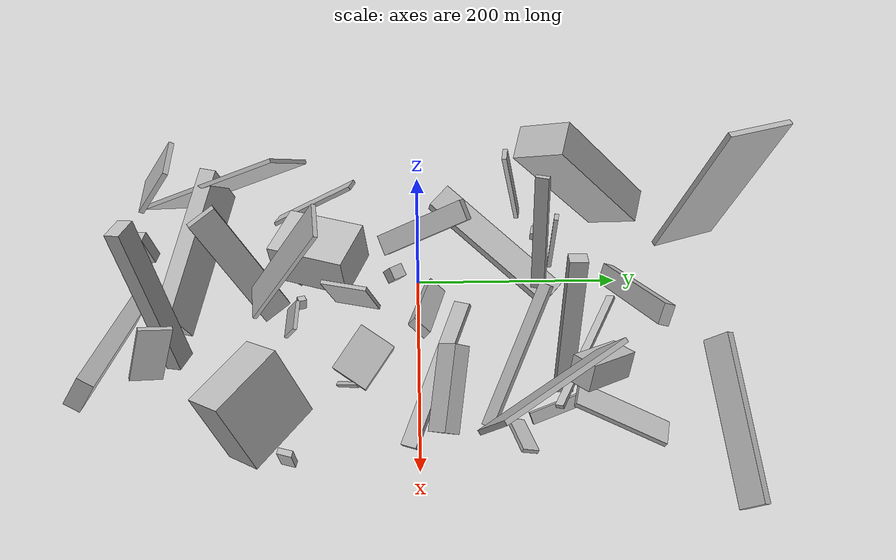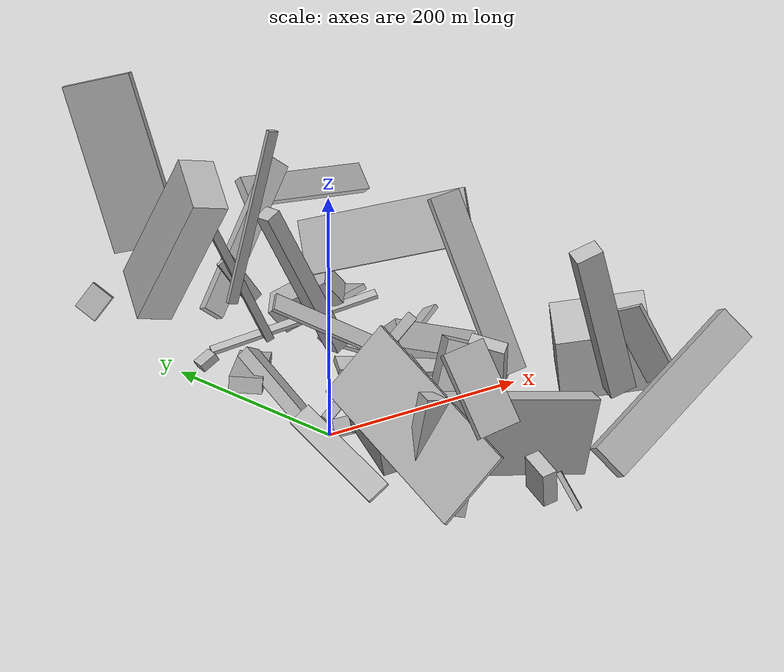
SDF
<sdf version="1.6">
 <world name="default">
  <model name="building_1">
   <static>0</static>
   <pose>174.36734629688388 231.2599779599466 27.141446685848827 -0.8732872669229372 -1.113736129037199 2.1446664471426815</pose>
   <link name="link">
    <gravity>0</gravity>
    <pose>0 0 47.5 0 0 0</pose>
    <collision name="collision"><geometry><box><size>5 27 95</size></box></geometry></collision>
    <visual name="visual">
     <cast_shadows>0</cast_shadows>
     <geometry><box><size>5 27 95</size></box></geometry>
     <material>
      <script>
       <uri>model://HANNAS_wall/materials/scripts</uri>
       <uri>model://HANNAS_wall/materials/textures</uri>
       <name>vrc/HANNAS_wall</name>
      </script>
     </material>
    </visual>
   </link>
  </model>
  <model name="building_3">
   <static>0</static>
   <pose>-40.39910329618209 191.63990746948053 79.43894417712931 0.6008189143455406 0.16520256820637802 -0.25455941626639517</pose>
   <link name="link">
    <gravity>0</gravity>
    <pose>0 0 71.0 0 0 0</pose>
    <collision name="collision"><geometry><box><size>31 51 142</size></box></geometry></collision>
    <visual name="visual">
     <cast_shadows>0</cast_shadows>
     <geometry><box><size>31 51 142</size></box></geometry>
     <material>
      <script>
       <uri>model://HANNAS_wall/materials/scripts</uri>
       <uri>model://HANNAS_wall/materials/textures</uri>
       <name>vrc/HANNAS_wall</name>
      </script>
     </material>
    </visual>
   </link>
  </model>
  <model name="building_5">
   <static>0</static>
   <pose>-25.729597605558347 94.49647526092654 94.10128005950435 0.2001391457598168 -0.12009668887181194 1.411736404524612</pose>
   <link name="link">
    <gravity>0</gravity>
    <pose>0 0 75.0 0 0 0</pose>
    <collision name="collision"><geometry><box><size>4 9 150</size></box></geometry></collision>
    <visual name="visual">
     <cast_shadows>0</cast_shadows>
     <geometry><box><size>4 9 150</size></box></geometry>
     <material>
      <script>
       <uri>model://HANNAS_wall/materials/scripts</uri>
       <uri>model://HANNAS_wall/materials/textures</uri>
       <name>vrc/HANNAS_wall</name>
      </script>
     </material>
    </visual>
   </link>
  </model>
  <model name="building_13">
   <static>0</static>
   <pose>-77.18770310812056 -106.40213230266279 33.805938020403794 2.3780515227894328 -0.5187781244510645 1.7485050249262817</pose>
   <link name="link">
    <gravity>0</gravity>
    <pose>0 0 2.0 0 0 0</pose>
    <collision name="collision"><geometry><box><size>93 20 4</size></box></geometry></collision>
    <visual name="visual">
     <cast_shadows>0</cast_shadows>
     <geometry><box><size>93 20 4</size></box></geometry>
     <material>
      <script>
       <uri>model://HANNAS_wall/materials/scripts</uri>
       <uri>model://HANNAS_wall/materials/textures</uri>
       <name>vrc/HANNAS_wall</name>
      </script>
     </material>
    </visual>
   </link>
  </model>
  <model name="building_14">
   <static>0</static>
   <pose>92.19635295547839 164.00552756208197 37.05098580078586 -2.5665605756596066 -1.0571663567287026 -2.5434076082742045</pose>
   <link name="link">
    <gravity>0</gravity>
    <pose>0 0 4.0 0 0 0</pose>
    <collision name="collision"><geometry><box><size>4 150 8</size></box></geometry></collision>
    <visual name="visual">
     <cast_shadows>0</cast_shadows>
     <geometry><box><size>4 150 8</size></box></geometry>
     <material>
      <script>
       <uri>model://HANNAS_wall/materials/scripts</uri>
       <uri>model://HANNAS_wall/materials/textures</uri>
       <name>vrc/HANNAS_wall</name>
      </script>
     </material>
    </visual>
   </link>
  </model>
  <model name="building_15">
   <static>0</static>
   <pose>3.5551108523970782 248.26793313926453 99.56997522379109 -0.298829362969662 -0.042202072265189856 0.41816913267975864</pose>
   <link name="link">
    <gravity>0</gravity>
    <pose>0 0 75.0 0 0 0</pose>
    <collision name="collision"><geometry><box><size>5 69 150</size></box></geometry></collision>
    <visual name="visual">
     <cast_shadows>0</cast_shadows>
     <geometry><box><size>5 69 150</size></box></geometry>
     <material>
      <script>
       <uri>model://HANNAS_wall/materials/scripts</uri>
       <uri>model://HANNAS_wall/materials/textures</uri>
       <name>vrc/HANNAS_wall</name>
      </script>
     </material>
    </visual>
   </link>
  </model>
  <model name="building_16">
   <static>0</static>
   <pose>-7.268309121083895 -17.85003618392824 12.61024600349591 -1.2063355338171553 -0.3518623754609598 -2.6668244650270623</pose>
   <link name="link">
    <gravity>0</gravity>
    <pose>0 0 7.5 0 0 0</pose>
    <collision name="collision"><geometry><box><size>13 14 15</size></box></geometry></collision>
    <visual name="visual">
     <cast_shadows>0</cast_shadows>
     <geometry><box><size>13 14 15</size></box></geometry>
     <material>
      <script>
       <uri>model://HANNAS_wall/materials/scripts</uri>
       <uri>model://HANNAS_wall/materials/textures</uri>
       <name>vrc/HANNAS_wall</name>
      </script>
     </material>
    </visual>
   </link>
  </model>
  <model name="building_17">
   <static>0</static>
   <pose>194.1936113669263 -120.89630584356293 42.32402051976345 -2.1458135325037277 -1.5479236261824147 -1.2586047190194605</pose>
   <link name="link">
    <gravity>0</gravity>
    <pose>0 0 3.0 0 0 0</pose>
    <collision name="collision"><geometry><box><size>33 14 6</size></box></geometry></collision>
    <visual name="visual">
     <cast_shadows>0</cast_shadows>
     <geometry><box><size>33 14 6</size></box></geometry>
     <material>
      <script>
       <uri>model://HANNAS_wall/materials/scripts</uri>
       <uri>model://HANNAS_wall/materials/textures</uri>
       <name>vrc/HANNAS_wall</name>
      </script>
     </material>
    </visual>
   </link>
  </model>
  <model name="building_20">
   <static>0</static>
   <pose>129.70936178740885 -126.98818704035558 75.74811191560099 -1.336728795560796 -0.9689612109121426 -2.4312931135623193</pose>
   <link name="link">
    <gravity>0</gravity>
    <pose>0 0 38.0 0 0 0</pose>
    <collision name="collision"><geometry><box><size>76 42 76</size></box></geometry></collision>
    <visual name="visual">
     <cast_shadows>0</cast_shadows>
     <geometry><box><size>76 42 76</size></box></geometry>
     <material>
      <script>
       <uri>model://HANNAS_wall/materials/scripts</uri>
       <uri>model://HANNAS_wall/materials/textures</uri>
       <name>vrc/HANNAS_wall</name>
      </script>
     </material>
    </visual>
   </link>
  </model>
  <model name="building_22">
   <static>0</static>
   <pose>-3.1592086004567825 -123.10743314857336 13.08156300726554 2.6225937311496597 -0.6310449323694713 -0.13633728982245896</pose>
   <link name="link">
    <gravity>0</gravity>
    <pose>0 0 3.0 0 0 0</pose>
    <collision name="collision"><geometry><box><size>4 20 6</size></box></geometry></collision>
    <visual name="visual">
     <cast_shadows>0</cast_shadows>
     <geometry><box><size>4 20 6</size></box></geometry>
     <material>
      <script>
       <uri>model://HANNAS_wall/materials/scripts</uri>
       <uri>model://HANNAS_wall/materials/textures</uri>
       <name>vrc/HANNAS_wall</name>
      </script>
     </material>
    </visual>
   </link>
  </model>
  <model name="building_23">
   <static>0</static>
   <pose>-27.39100389363393 117.93627369657851 44.05733290219502 3.0182347313635725 -0.996153715034612 3.076026591196126</pose>
   <link name="link">
    <gravity>0</gravity>
    <pose>0 0 8.0 0 0 0</pose>
    <collision name="collision"><geometry><box><size>7 13 16</size></box></geometry></collision>
    <visual name="visual">
     <cast_shadows>0</cast_shadows>
     <geometry><box><size>7 13 16</size></box></geometry>
     <material>
      <script>
       <uri>model://HANNAS_wall/materials/scripts</uri>
       <uri>model://HANNAS_wall/materials/textures</uri>
       <name>vrc/HANNAS_wall</name>
      </script>
     </material>
    </visual>
   </link>
  </model>
  <model name="building_24">
   <static>0</static>
   <pose>26.973400686674545 132.14765035069843 24.03517875023291 1.3776252631096089 0.05282714476733622 -0.7243072520045866</pose>
   <link name="link">
    <gravity>0</gravity>
    <pose>0 0 75.0 0 0 0</pose>
    <collision name="collision"><geometry><box><size>27 13 150</size></box></geometry></collision>
    <visual name="visual">
     <cast_shadows>0</cast_shadows>
     <geometry><box><size>27 13 150</size></box></geometry>
     <material>
      <script>
       <uri>model://HANNAS_wall/materials/scripts</uri>
       <uri>model://HANNAS_wall/materials/textures</uri>
       <name>vrc/HANNAS_wall</name>
      </script>
     </material>
    </visual>
   </link>
  </model>
  <model name="building_25">
   <static>0</static>
   <pose>46.15120974842775 11.531267786093599 46.95422453565074 -2.5470234188605807 0.7614344961592602 2.9359318297008716</pose>
   <link name="link">
    <gravity>0</gravity>
    <pose>0 0 4.5 0 0 0</pose>
    <collision name="collision"><geometry><box><size>111 20 9</size></box></geometry></collision>
    <visual name="visual">
     <cast_shadows>0</cast_shadows>
     <geometry><box><size>111 20 9</size></box></geometry>
     <material>
      <script>
       <uri>model://HANNAS_wall/materials/scripts</uri>
       <uri>model://HANNAS_wall/materials/textures</uri>
       <name>vrc/HANNAS_wall</name>
      </script>
     </material>
    </visual>
   </link>
  </model>
  <model name="building_27">
   <static>0</static>
   <pose>108.48793379506628 9.311899910124922 25.417209497107965 -0.3328074199115779 -1.1414288183826067 -1.634729710016632</pose>
   <link name="link">
    <gravity>0</gravity>
    <pose>0 0 8.5 0 0 0</pose>
    <collision name="collision"><geometry><box><size>5 150 17</size></box></geometry></collision>
    <visual name="visual">
     <cast_shadows>0</cast_shadows>
     <geometry><box><size>5 150 17</size></box></geometry>
     <material>
      <script>
       <uri>model://HANNAS_wall/materials/scripts</uri>
       <uri>model://HANNAS_wall/materials/textures</uri>
       <name>vrc/HANNAS_wall</name>
      </script>
     </material>
    </visual>
   </link>
  </model>
  <model name="building_28">
   <static>0</static>
   <pose>67.8852507462868 -233.49586623435292 51.98444093050171 0.6295555266161983 -1.385721737459078 -0.8874586800261298</pose>
   <link name="link">
    <gravity>0</gravity>
    <pose>0 0 75.0 0 0 0</pose>
    <collision name="collision"><geometry><box><size>63 16 150</size></box></geometry></collision>
    <visual name="visual">
     <cast_shadows>0</cast_shadows>
     <geometry><box><size>63 16 150</size></box></geometry>
     <material>
      <script>
       <uri>model://HANNAS_wall/materials/scripts</uri>
       <uri>model://HANNAS_wall/materials/textures</uri>
       <name>vrc/HANNAS_wall</name>
      </script>
     </material>
    </visual>
   </link>
  </model>
  <model name="building_29">
   <static>0</static>
   <pose>79.31475940042036 -39.43008949530707 42.58717189564554 2.421663465910351 -1.2280895493897095 0.12406963455317943</pose>
   <link name="link">
    <gravity>0</gravity>
    <pose>0 0 24.0 0 0 0</pose>
    <collision name="collision"><geometry><box><size>67 37 48</size></box></geometry></collision>
    <visual name="visual">
     <cast_shadows>0</cast_shadows>
     <geometry><box><size>67 37 48</size></box></geometry>
     <material>
      <script>
       <uri>model://HANNAS_wall/materials/scripts</uri>
       <uri>model://HANNAS_wall/materials/textures</uri>
       <name>vrc/HANNAS_wall</name>
      </script>
     </material>
    </visual>
   </link>
  </model>
  <model name="building_30">
   <static>0</static>
   <pose>154.85291042358122 116.12120214122866 114.21284905763811 2.496139732447904 -1.1261855624203934 1.2627710896779047</pose>
   <link name="link">
    <gravity>0</gravity>
    <pose>0 0 2.5 0 0 0</pose>
    <collision name="collision"><geometry><box><size>48 150 5</size></box></geometry></collision>
    <visual name="visual">
     <cast_shadows>0</cast_shadows>
     <geometry><box><size>48 150 5</size></box></geometry>
     <material>
      <script>
       <uri>model://HANNAS_wall/materials/scripts</uri>
       <uri>model://HANNAS_wall/materials/textures</uri>
       <name>vrc/HANNAS_wall</name>
      </script>
     </material>
    </visual>
   </link>
  </model>
  <model name="building_32">
   <static>0</static>
   <pose>113.96951645104194 -219.26711060321406 74.87785327934884 0.3654502174996851 -0.3640460834052259 -0.3948720870360139</pose>
   <link name="link">
    <gravity>0</gravity>
    <pose>0 0 75.0 0 0 0</pose>
    <collision name="collision"><geometry><box><size>22 15 150</size></box></geometry></collision>
    <visual name="visual">
     <cast_shadows>0</cast_shadows>
     <geometry><box><size>22 15 150</size></box></geometry>
     <material>
      <script>
       <uri>model://HANNAS_wall/materials/scripts</uri>
       <uri>model://HANNAS_wall/materials/textures</uri>
       <name>vrc/HANNAS_wall</name>
      </script>
     </material>
    </visual>
   </link>
  </model>
  <model name="building_34">
   <static>0</static>
   <pose>-44.03531383251006 -206.81156835450474 26.19266079417418 1.0192126103507604 -0.7417760807912261 2.3349694983214686</pose>
   <link name="link">
    <gravity>0</gravity>
    <pose>0 0 8.5 0 0 0</pose>
    <collision name="collision"><geometry><box><size>22 27 17</size></box></geometry></collision>
    <visual name="visual">
     <cast_shadows>0</cast_shadows>
     <geometry><box><size>22 27 17</size></box></geometry>
     <material>
      <script>
       <uri>model://HANNAS_wall/materials/scripts</uri>
       <uri>model://HANNAS_wall/materials/textures</uri>
       <name>vrc/HANNAS_wall</name>
      </script>
     </material>
    </visual>
   </link>
  </model>
  <model name="building_39">
   <static>0</static>
   <pose>-50.98980567068213 -263.5373254386018 89.99659241084144 0.1684352785363565 -0.5260640166883573 -1.6994031148283462</pose>
   <link name="link">
    <gravity>0</gravity>
    <pose>0 0 34.0 0 0 0</pose>
    <collision name="collision"><geometry><box><size>5 38 68</size></box></geometry></collision>
    <visual name="visual">
     <cast_shadows>0</cast_shadows>
     <geometry><box><size>5 38 68</size></box></geometry>
     <material>
      <script>
       <uri>model://HANNAS_wall/materials/scripts</uri>
       <uri>model://HANNAS_wall/materials/textures</uri>
       <name>vrc/HANNAS_wall</name>
      </script>
     </material>
    </visual>
   </link>
  </model>
  <model name="building_41">
   <static>0</static>
   <pose>6.445788620039551 -281.6871438189983 34.478035078115624 -2.651118027625952 -0.9650329817899014 1.901986694330685</pose>
   <link name="link">
    <gravity>0</gravity>
    <pose>0 0 2.0 0 0 0</pose>
    <collision name="collision"><geometry><box><size>32 5 4</size></box></geometry></collision>
    <visual name="visual">
     <cast_shadows>0</cast_shadows>
     <geometry><box><size>32 5 4</size></box></geometry>
     <material>
      <script>
       <uri>model://HANNAS_wall/materials/scripts</uri>
       <uri>model://HANNAS_wall/materials/textures</uri>
       <name>vrc/HANNAS_wall</name>
      </script>
     </material>
    </visual>
   </link>
  </model>
  <model name="building_42">
   <static>0</static>
   <pose>-3.6266431205827603 116.70644551662963 99.17197442002293 1.0997683650112111 -0.1886422758779975 1.2557613244781551</pose>
   <link name="link">
    <gravity>0</gravity>
    <pose>0 0 3.5 0 0 0</pose>
    <collision name="collision"><geometry><box><size>13 122 7</size></box></geometry></collision>
    <visual name="visual">
     <cast_shadows>0</cast_shadows>
     <geometry><box><size>13 122 7</size></box></geometry>
     <material>
      <script>
       <uri>model://HANNAS_wall/materials/scripts</uri>
       <uri>model://HANNAS_wall/materials/textures</uri>
       <name>vrc/HANNAS_wall</name>
      </script>
     </material>
    </visual>
   </link>
  </model>
  <model name="building_44">
   <static>0</static>
   <pose>59.00420479480109 -153.26032268849926 80.75520378274454 0.4755439015231281 0.04764452115313102 -3.0533476879180346</pose>
   <link name="link">
    <gravity>0</gravity>
    <pose>0 0 75.0 0 0 0</pose>
    <collision name="collision"><geometry><box><size>32 4 150</size></box></geometry></collision>
    <visual name="visual">
     <cast_shadows>0</cast_shadows>
     <geometry><box><size>32 4 150</size></box></geometry>
     <material>
      <script>
       <uri>model://HANNAS_wall/materials/scripts</uri>
       <uri>model://HANNAS_wall/materials/textures</uri>
       <name>vrc/HANNAS_wall</name>
      </script>
     </material>
    </visual>
   </link>
  </model>
  <model name="building_48">
   <static>0</static>
   <pose>65.30433910517637 191.36793252850256 109.62142704465931 1.9847587397351774 -0.6209544276973409 2.7833804690738386</pose>
   <link name="link">
    <gravity>0</gravity>
    <pose>0 0 5.0 0 0 0</pose>
    <collision name="collision"><geometry><box><size>19 147 10</size></box></geometry></collision>
    <visual name="visual">
     <cast_shadows>0</cast_shadows>
     <geometry><box><size>19 147 10</size></box></geometry>
     <material>
      <script>
       <uri>model://HANNAS_wall/materials/scripts</uri>
       <uri>model://HANNAS_wall/materials/textures</uri>
       <name>vrc/HANNAS_wall</name>
      </script>
     </material>
    </visual>
   </link>
  </model>
  <model name="building_50">
   <static>0</static>
   <pose>171.27620363479522 21.948212680981598 30.01114881751691 -1.106334248917696 -0.831722412417579 1.0770260152764768</pose>
   <link name="link">
    <gravity>0</gravity>
    <pose>0 0 41.5 0 0 0</pose>
    <collision name="collision"><geometry><box><size>26 17 83</size></box></geometry></collision>
    <visual name="visual">
     <cast_shadows>0</cast_shadows>
     <geometry><box><size>26 17 83</size></box></geometry>
     <material>
      <script>
       <uri>model://HANNAS_wall/materials/scripts</uri>
       <uri>model://HANNAS_wall/materials/textures</uri>
       <name>vrc/HANNAS_wall</name>
      </script>
     </material>
    </visual>
   </link>
  </model>
  <model name="building_52">
   <static>0</static>
   <pose>84.7817575338651 131.9434062277884 79.16911351836879 1.595790159095712 0.5020599231579506 -3.1314358716728115</pose>
   <link name="link">
    <gravity>0</gravity>
    <pose>0 0 8.5 0 0 0</pose>
    <collision name="collision"><geometry><box><size>14 150 17</size></box></geometry></collision>
    <visual name="visual">
     <cast_shadows>0</cast_shadows>
     <geometry><box><size>14 150 17</size></box></geometry>
     <material>
      <script>
       <uri>model://HANNAS_wall/materials/scripts</uri>
       <uri>model://HANNAS_wall/materials/textures</uri>
       <name>vrc/HANNAS_wall</name>
      </script>
     </material>
    </visual>
   </link>
  </model>
  <model name="building_53">
   <static>0</static>
   <pose>111.46002044455663 -275.6524530314864 85.74526493557487 1.0876713078447433 -0.6392996609157392 -0.11612229347507132</pose>
   <link name="link">
    <gravity>0</gravity>
    <pose>0 0 8.0 0 0 0</pose>
    <collision name="collision"><geometry><box><size>150 31 16</size></box></geometry></collision>
    <visual name="visual">
     <cast_shadows>0</cast_shadows>
     <geometry><box><size>150 31 16</size></box></geometry>
     <material>
      <script>
       <uri>model://HANNAS_wall/materials/scripts</uri>
       <uri>model://HANNAS_wall/materials/textures</uri>
       <name>vrc/HANNAS_wall</name>
      </script>
     </material>
    </visual>
   </link>
  </model>
  <model name="building_57">
   <static>0</static>
   <pose>-40.443606922205284 267.01508549367355 54.897420345694925 1.0994358464753404 -0.8791899606464222 -0.40428328882231956</pose>
   <link name="link">
    <gravity>0</gravity>
    <pose>0 0 4.5 0 0 0</pose>
    <collision name="collision"><geometry><box><size>25 21 9</size></box></geometry></collision>
    <visual name="visual">
     <cast_shadows>0</cast_shadows>
     <geometry><box><size>25 21 9</size></box></geometry>
     <material>
      <script>
       <uri>model://HANNAS_wall/materials/scripts</uri>
       <uri>model://HANNAS_wall/materials/textures</uri>
       <name>vrc/HANNAS_wall</name>
      </script>
     </material>
    </visual>
   </link>
  </model>
  <model name="building_58">
   <static>0</static>
   <pose>-43.96295902434635 8.160667575355689 37.13247763944116 0.4868264050558513 -0.5753061784456509 1.689908817154546</pose>
   <link name="link">
    <gravity>0</gravity>
    <pose>0 0 5.5 0 0 0</pose>
    <collision name="collision"><geometry><box><size>99 21 11</size></box></geometry></collision>
    <visual name="visual">
     <cast_shadows>0</cast_shadows>
     <geometry><box><size>99 21 11</size></box></geometry>
     <material>
      <script>
       <uri>model://HANNAS_wall/materials/scripts</uri>
       <uri>model://HANNAS_wall/materials/textures</uri>
       <name>vrc/HANNAS_wall</name>
      </script>
     </material>
    </visual>
   </link>
  </model>
  <model name="building_60">
   <static>0</static>
   <pose>157.519631688414 90.41929974238532 23.415751530804638 0.793975489055341 -0.9046360122363605 2.513376108519469</pose>
   <link name="link">
    <gravity>0</gravity>
    <pose>0 0 21.0 0 0 0</pose>
    <collision name="collision"><geometry><box><size>4 17 42</size></box></geometry></collision>
    <visual name="visual">
     <cast_shadows>0</cast_shadows>
     <geometry><box><size>4 17 42</size></box></geometry>
     <material>
      <script>
       <uri>model://HANNAS_wall/materials/scripts</uri>
       <uri>model://HANNAS_wall/materials/textures</uri>
       <name>vrc/HANNAS_wall</name>
      </script>
     </material>
    </visual>
   </link>
  </model>
  <model name="building_62">
   <static>0</static>
   <pose>120.83851961801105 -237.50301776774853 112.95271184410768 0.9401965244346461 -1.0866346943783032 2.4609529523528217</pose>
   <link name="link">
    <gravity>0</gravity>
    <pose>0 0 2.0 0 0 0</pose>
    <collision name="collision"><geometry><box><size>65 30 4</size></box></geometry></collision>
    <visual name="visual">
     <cast_shadows>0</cast_shadows>
     <geometry><box><size>65 30 4</size></box></geometry>
     <material>
      <script>
       <uri>model://HANNAS_wall/materials/scripts</uri>
       <uri>model://HANNAS_wall/materials/textures</uri>
       <name>vrc/HANNAS_wall</name>
      </script>
     </material>
    </visual>
   </link>
  </model>
  <model name="building_63">
   <static>0</static>
   <pose>24.425813787760415 -118.43120030080206 12.211408648713617 1.2114347219755626 0.24636109981887225 1.9156503333945858</pose>
   <link name="link">
    <gravity>0</gravity>
    <pose>0 0 3.5 0 0 0</pose>
    <collision name="collision"><geometry><box><size>8 11 7</size></box></geometry></collision>
    <visual name="visual">
     <cast_shadows>0</cast_shadows>
     <geometry><box><size>8 11 7</size></box></geometry>
     <material>
      <script>
       <uri>model://HANNAS_wall/materials/scripts</uri>
       <uri>model://HANNAS_wall/materials/textures</uri>
       <name>vrc/HANNAS_wall</name>
      </script>
     </material>
    </visual>
   </link>
  </model>
  <model name="building_65">
   <static>0</static>
   <pose>126.84905769186902 168.9226976717941 11.175018299807839 -1.6858750314519149 -0.6671587795967721 -2.7172781157264763</pose>
   <link name="link">
    <gravity>0</gravity>
    <pose>0 0 33.0 0 0 0</pose>
    <collision name="collision"><geometry><box><size>12 4 66</size></box></geometry></collision>
    <visual name="visual">
     <cast_shadows>0</cast_shadows>
     <geometry><box><size>12 4 66</size></box></geometry>
     <material>
      <script>
       <uri>model://HANNAS_wall/materials/scripts</uri>
       <uri>model://HANNAS_wall/materials/textures</uri>
       <name>vrc/HANNAS_wall</name>
      </script>
     </material>
    </visual>
   </link>
  </model>
  <model name="building_67">
   <static>0</static>
   <pose>-25.855335647805788 -134.7804914205324 38.04241410143925 0.8737518031814905 -1.276622361887384 -2.8151539211634784</pose>
   <link name="link">
    <gravity>0</gravity>
    <pose>0 0 39.5 0 0 0</pose>
    <collision name="collision"><geometry><box><size>43 55 79</size></box></geometry></collision>
    <visual name="visual">
     <cast_shadows>0</cast_shadows>
     <geometry><box><size>43 55 79</size></box></geometry>
     <material>
      <script>
       <uri>model://HANNAS_wall/materials/scripts</uri>
       <uri>model://HANNAS_wall/materials/textures</uri>
       <name>vrc/HANNAS_wall</name>
      </script>
     </material>
    </visual>
   </link>
  </model>
  <model name="building_69">
   <static>0</static>
   <pose>190.02465097813877 263.28694363209377 103.698194568818 0.6616828637423167 -0.12132958496024222 -3.024579277954264</pose>
   <link name="link">
    <gravity>0</gravity>
    <pose>0 0 13.0 0 0 0</pose>
    <collision name="collision"><geometry><box><size>150 8 26</size></box></geometry></collision>
    <visual name="visual">
     <cast_shadows>0</cast_shadows>
     <geometry><box><size>150 8 26</size></box></geometry>
     <material>
      <script>
       <uri>model://HANNAS_wall/materials/scripts</uri>
       <uri>model://HANNAS_wall/materials/textures</uri>
       <name>vrc/HANNAS_wall</name>
      </script>
     </material>
    </visual>
   </link>
  </model>
  <model name="building_70">
   <static>0</static>
   <pose>-69.18333267612428 -188.10989362614382 78.05090458125476 0.8713739432650733 -0.9023058680391793 -0.6961410797199162</pose>
   <link name="link">
    <gravity>0</gravity>
    <pose>0 0 2.0 0 0 0</pose>
    <collision name="collision"><geometry><box><size>68 150 4</size></box></geometry></collision>
    <visual name="visual">
     <cast_shadows>0</cast_shadows>
     <geometry><box><size>68 150 4</size></box></geometry>
     <material>
      <script>
       <uri>model://HANNAS_wall/materials/scripts</uri>
       <uri>model://HANNAS_wall/materials/textures</uri>
       <name>vrc/HANNAS_wall</name>
      </script>
     </material>
    </visual>
   </link>
  </model>
  <model name="building_72">
   <static>0</static>
   <pose>31.878285333343257 -65.35005695901648 44.177569396576345 -2.1038959668503114 -1.328789328848852 -1.3139788199721394</pose>
   <link name="link">
    <gravity>0</gravity>
    <pose>0 0 2.0 0 0 0</pose>
    <collision name="collision"><geometry><box><size>50 47 4</size></box></geometry></collision>
    <visual name="visual">
     <cast_shadows>0</cast_shadows>
     <geometry><box><size>50 47 4</size></box></geometry>
     <material>
      <script>
       <uri>model://HANNAS_wall/materials/scripts</uri>
       <uri>model://HANNAS_wall/materials/textures</uri>
       <name>vrc/HANNAS_wall</name>
      </script>
     </material>
    </visual>
   </link>
  </model>
  <model name="building_76">
   <static>0</static>
   <pose>98.65094472470035 91.93852052491076 40.9256775188346 2.4118533804678197 -0.48541957848095724 2.697501285308684</pose>
   <link name="link">
    <gravity>0</gravity>
    <pose>0 0 2.0 0 0 0</pose>
    <collision name="collision"><geometry><box><size>148 16 4</size></box></geometry></collision>
    <visual name="visual">
     <cast_shadows>0</cast_shadows>
     <geometry><box><size>148 16 4</size></box></geometry>
     <material>
      <script>
       <uri>model://HANNAS_wall/materials/scripts</uri>
       <uri>model://HANNAS_wall/materials/textures</uri>
       <name>vrc/HANNAS_wall</name>
      </script>
     </material>
    </visual>
   </link>
  </model>
  <model name="building_78">
   <static>0</static>
   <pose>62.78484006702746 -126.4779968057464 17.40887642491629 1.433901569355989 1.1501622633588457 -1.7726978033069292</pose>
   <link name="link">
    <gravity>0</gravity>
    <pose>0 0 15.0 0 0 0</pose>
    <collision name="collision"><geometry><box><size>29 4 30</size></box></geometry></collision>
    <visual name="visual">
     <cast_shadows>0</cast_shadows>
     <geometry><box><size>29 4 30</size></box></geometry>
     <material>
      <script>
       <uri>model://HANNAS_wall/materials/scripts</uri>
       <uri>model://HANNAS_wall/materials/textures</uri>
       <name>vrc/HANNAS_wall</name>
      </script>
     </material>
    </visual>
   </link>
  </model>
  <model name="building_79">
   <static>0</static>
   <pose>12.064640350162096 -156.7441810983064 86.30434181464726 -1.8964773762818452 -0.8822852820445976 -2.2701462421743943</pose>
   <link name="link">
    <gravity>0</gravity>
    <pose>0 0 14.5 0 0 0</pose>
    <collision name="collision"><geometry><box><size>125 10 29</size></box></geometry></collision>
    <visual name="visual">
     <cast_shadows>0</cast_shadows>
     <geometry><box><size>125 10 29</size></box></geometry>
     <material>
      <script>
       <uri>model://HANNAS_wall/materials/scripts</uri>
       <uri>model://HANNAS_wall/materials/textures</uri>
       <name>vrc/HANNAS_wall</name>
      </script>
     </material>
    </visual>
   </link>
  </model>
  <model name="building_82">
   <static>0</static>
   <pose>121.86419701355294 180.00940109377206 54.951012606531144 2.208011131358625 0.8491298080698522 -0.24721010918950853</pose>
   <link name="link">
    <gravity>0</gravity>
    <pose>0 0 13.0 0 0 0</pose>
    <collision name="collision"><geometry><box><size>27 61 26</size></box></geometry></collision>
    <visual name="visual">
     <cast_shadows>0</cast_shadows>
     <geometry><box><size>27 61 26</size></box></geometry>
     <material>
      <script>
       <uri>model://HANNAS_wall/materials/scripts</uri>
       <uri>model://HANNAS_wall/materials/textures</uri>
       <name>vrc/HANNAS_wall</name>
      </script>
     </material>
    </visual>
   </link>
  </model>
  <model name="building_84">
   <static>0</static>
   <pose>-51.03207765934959 -228.3623823545631 26.430933523541558 -1.2886770505323253 0.12612321493589929 1.3229159998314513</pose>
   <link name="link">
    <gravity>0</gravity>
    <pose>0 0 11.0 0 0 0</pose>
    <collision name="collision"><geometry><box><size>5 30 22</size></box></geometry></collision>
    <visual name="visual">
     <cast_shadows>0</cast_shadows>
     <geometry><box><size>5 30 22</size></box></geometry>
     <material>
      <script>
       <uri>model://HANNAS_wall/materials/scripts</uri>
       <uri>model://HANNAS_wall/materials/textures</uri>
       <name>vrc/HANNAS_wall</name>
      </script>
     </material>
    </visual>
   </link>
  </model>
  <model name="building_86">
   <static>0</static>
   <pose>20.90687231116848 124.39354173114035 79.73449271898788 -0.027038028120927426 0.6243646580954716 2.9398149597061374</pose>
   <link name="link">
    <gravity>0</gravity>
    <pose>0 0 24.5 0 0 0</pose>
    <collision name="collision"><geometry><box><size>14 4 49</size></box></geometry></collision>
    <visual name="visual">
     <cast_shadows>0</cast_shadows>
     <geometry><box><size>14 4 49</size></box></geometry>
     <material>
      <script>
       <uri>model://HANNAS_wall/materials/scripts</uri>
       <uri>model://HANNAS_wall/materials/textures</uri>
       <name>vrc/HANNAS_wall</name>
      </script>
     </material>
    </visual>
   </link>
  </model>
  <model name="building_87">
   <static>0</static>
   <pose>-13.7971121683295 -270.798434622316 33.306207904785936 0.2578161700282592 0.3360791879935969 -1.7195583117201965</pose>
   <link name="link">
    <gravity>0</gravity>
    <pose>0 0 15.5 0 0 0</pose>
    <collision name="collision"><geometry><box><size>26 12 31</size></box></geometry></collision>
    <visual name="visual">
     <cast_shadows>0</cast_shadows>
     <geometry><box><size>26 12 31</size></box></geometry>
     <material>
      <script>
       <uri>model://HANNAS_wall/materials/scripts</uri>
       <uri>model://HANNAS_wall/materials/textures</uri>
       <name>vrc/HANNAS_wall</name>
      </script>
     </material>
    </visual>
   </link>
  </model>
  <model name="building_89">
   <static>0</static>
   <pose>121.97277572003051 -68.95892632497251 26.198556702942177 -1.63333240385452 -0.8731790658764506 1.0720329735727507</pose>
   <link name="link">
    <gravity>0</gravity>
    <pose>0 0 2.0 0 0 0</pose>
    <collision name="collision"><geometry><box><size>38 4 4</size></box></geometry></collision>
    <visual name="visual">
     <cast_shadows>0</cast_shadows>
     <geometry><box><size>38 4 4</size></box></geometry>
     <material>
      <script>
       <uri>model://HANNAS_wall/materials/scripts</uri>
       <uri>model://HANNAS_wall/materials/textures</uri>
       <name>vrc/HANNAS_wall</name>
      </script>
     </material>
    </visual>
   </link>
  </model>
 </world>
</sdf>
